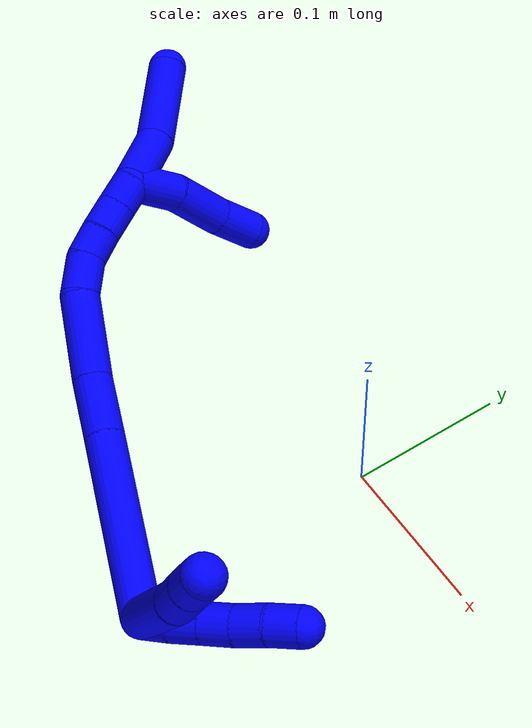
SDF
<sdf version="1.7">
 <world name="default">
  <model name="1">
   <static>0</static>
   <link name="1">
    <collision name="collision-cylinder-e_1_2_8">
     <pose>0.029746 0.015018 0.037684 -0.379226 0.632704 -0.125482</pose>
     <geometry><cylinder><radius>0.0125</radius><length>0.100608</length></cylinder></geometry>
     <surface>
      <friction><ode><mu>1.16</mu><mu2>1.16</mu2><slip1>0</slip1><slip2>0</slip2></ode></friction>
      <contact><ode><kp>1e+06</kp><kd>1</kd><max_vel>0</max_vel><min_depth>0.001</min_depth></ode></contact>
     </surface>
    </collision>
    <visual name="visual-cylinder-e_1_2_8">
     <pose>0.029746 0.015018 0.037684 -0.379226 0.632704 -0.125482</pose>
     <geometry><cylinder><radius>0.0125</radius><length>0.100608</length></cylinder></geometry>
     <material><ambient>0 0 1 1</ambient></material>
    </visual>
    <collision name="collision-cylinder-e_2_8_9">
     <pose>0.068793 0.035911 0.084525 -0.570487 0.707347 -0.215687</pose>
     <geometry><cylinder><radius>0.0125</radius><length>0.028627</length></cylinder></geometry>
     <surface>
      <friction><ode><mu>1.16</mu><mu2>1.16</mu2><slip1>0</slip1><slip2>0</slip2></ode></friction>
      <contact><ode><kp>1e+06</kp><kd>1</kd><max_vel>0</max_vel><min_depth>0.001</min_depth></ode></contact>
     </surface>
    </collision>
    <visual name="visual-cylinder-e_2_8_9">
     <pose>0.068793 0.035911 0.084525 -0.570487 0.707347 -0.215687</pose>
     <geometry><cylinder><radius>0.0125</radius><length>0.028627</length></cylinder></geometry>
     <material><ambient>0 0 1 1</ambient></material>
    </visual>
    <collision name="collision-cylinder-e_3_9_6">
     <pose>0.085267 0.045926 0.099945 -0.584009 0.762548 -0.239856</pose>
     <geometry><cylinder><radius>0.0125</radius><length>0.020765</length></cylinder></geometry>
     <surface>
      <friction><ode><mu>1.16</mu><mu2>1.16</mu2><slip1>0</slip1><slip2>0</slip2></ode></friction>
      <contact><ode><kp>1e+06</kp><kd>1</kd><max_vel>0</max_vel><min_depth>0.001</min_depth></ode></contact>
     </surface>
    </collision>
    <visual name="visual-cylinder-e_3_9_6">
     <pose>0.085267 0.045926 0.099945 -0.584009 0.762548 -0.239856</pose>
     <geometry><cylinder><radius>0.0125</radius><length>0.020765</length></cylinder></geometry>
     <material><ambient>0 0 1 1</ambient></material>
    </visual>
    <collision name="collision-cylinder-e_1_2_10">
     <pose>0.009459 -0.002394 0.002192 0.829561 1.24021 0.60927</pose>
     <geometry><cylinder><radius>0.0125</radius><length>0.02</length></cylinder></geometry>
     <surface>
      <friction><ode><mu>1.16</mu><mu2>1.16</mu2><slip1>0</slip1><slip2>0</slip2></ode></friction>
      <contact><ode><kp>1e+06</kp><kd>1</kd><max_vel>0</max_vel><min_depth>0.001</min_depth></ode></contact>
     </surface>
    </collision>
    <visual name="visual-cylinder-e_1_2_10">
     <pose>0.009459 -0.002394 0.002192 0.829561 1.24021 0.60927</pose>
     <geometry><cylinder><radius>0.0125</radius><length>0.02</length></cylinder></geometry>
     <material><ambient>0 0 1 1</ambient></material>
    </visual>
    <collision name="collision-cylinder-e_2_10_11">
     <pose>0.028563 -0.007206 0.005438 1.15938 1.30393 0.926908</pose>
     <geometry><cylinder><radius>0.0125</radius><length>0.02</length></cylinder></geometry>
     <surface>
      <friction><ode><mu>1.16</mu><mu2>1.16</mu2><slip1>0</slip1><slip2>0</slip2></ode></friction>
      <contact><ode><kp>1e+06</kp><kd>1</kd><max_vel>0</max_vel><min_depth>0.001</min_depth></ode></contact>
     </surface>
    </collision>
    <visual name="visual-cylinder-e_2_10_11">
     <pose>0.028563 -0.007206 0.005438 1.15938 1.30393 0.926908</pose>
     <geometry><cylinder><radius>0.0125</radius><length>0.02</length></cylinder></geometry>
     <material><ambient>0 0 1 1</ambient></material>
    </visual>
    <collision name="collision-cylinder-e_3_11_12">
     <pose>0.047828 -0.012113 0.007623 1.14478 1.29376 0.905856</pose>
     <geometry><cylinder><radius>0.0125</radius><length>0.02</length></cylinder></geometry>
     <surface>
      <friction><ode><mu>1.16</mu><mu2>1.16</mu2><slip1>0</slip1><slip2>0</slip2></ode></friction>
      <contact><ode><kp>1e+06</kp><kd>1</kd><max_vel>0</max_vel><min_depth>0.001</min_depth></ode></contact>
     </surface>
    </collision>
    <visual name="visual-cylinder-e_3_11_12">
     <pose>0.047828 -0.012113 0.007623 1.14478 1.29376 0.905856</pose>
     <geometry><cylinder><radius>0.0125</radius><length>0.02</length></cylinder></geometry>
     <material><ambient>0 0 1 1</ambient></material>
    </visual>
    <collision name="collision-cylinder-e_4_12_13">
     <pose>0.067239 -0.016163 0.010045 0.878826 1.36688 0.73119</pose>
     <geometry><cylinder><radius>0.0125</radius><length>0.02</length></cylinder></geometry>
     <surface>
      <friction><ode><mu>1.16</mu><mu2>1.16</mu2><slip1>0</slip1><slip2>0</slip2></ode></friction>
      <contact><ode><kp>1e+06</kp><kd>1</kd><max_vel>0</max_vel><min_depth>0.001</min_depth></ode></contact>
     </surface>
    </collision>
    <visual name="visual-cylinder-e_4_12_13">
     <pose>0.067239 -0.016163 0.010045 0.878826 1.36688 0.73119</pose>
     <geometry><cylinder><radius>0.0125</radius><length>0.02</length></cylinder></geometry>
     <material><ambient>0 0 1 1</ambient></material>
    </visual>
    <collision name="collision-cylinder-e_5_13_5">
     <pose>0.086682 -0.020245 0.012052 1.29482 1.30553 1.04835</pose>
     <geometry><cylinder><radius>0.0125</radius><length>0.02</length></cylinder></geometry>
     <surface>
      <friction><ode><mu>1.16</mu><mu2>1.16</mu2><slip1>0</slip1><slip2>0</slip2></ode></friction>
      <contact><ode><kp>1e+06</kp><kd>1</kd><max_vel>0</max_vel><min_depth>0.001</min_depth></ode></contact>
     </surface>
    </collision>
    <visual name="visual-cylinder-e_5_13_5">
     <pose>0.086682 -0.020245 0.012052 1.29482 1.30553 1.04835</pose>
     <geometry><cylinder><radius>0.0125</radius><length>0.02</length></cylinder></geometry>
     <material><ambient>0 0 1 1</ambient></material>
    </visual>
    <collision name="collision-cylinder-e_1_2_14">
     <pose>-0.007711 0.0455 -0.036403 -2.24558 -0.131569 0.272457</pose>
     <geometry><cylinder><radius>0.0125</radius><length>0.117556</length></cylinder></geometry>
     <surface>
      <friction><ode><mu>1.16</mu><mu2>1.16</mu2><slip1>0</slip1><slip2>0</slip2></ode></friction>
      <contact><ode><kp>1e+06</kp><kd>1</kd><max_vel>0</max_vel><min_depth>0.001</min_depth></ode></contact>
     </surface>
    </collision>
    <visual name="visual-cylinder-e_1_2_14">
     <pose>-0.007711 0.0455 -0.036403 -2.24558 -0.131569 0.272457</pose>
     <geometry><cylinder><radius>0.0125</radius><length>0.117556</length></cylinder></geometry>
     <material><ambient>0 0 1 1</ambient></material>
    </visual>
    <collision name="collision-cylinder-e_2_14_15">
     <pose>-0.017989 0.106751 -0.084904 -2.22578 -0.12853 0.259681</pose>
     <geometry><cylinder><radius>0.0125</radius><length>0.040054</length></cylinder></geometry>
     <surface>
      <friction><ode><mu>1.16</mu><mu2>1.16</mu2><slip1>0</slip1><slip2>0</slip2></ode></friction>
      <contact><ode><kp>1e+06</kp><kd>1</kd><max_vel>0</max_vel><min_depth>0.001</min_depth></ode></contact>
     </surface>
    </collision>
    <visual name="visual-cylinder-e_2_14_15">
     <pose>-0.017989 0.106751 -0.084904 -2.22578 -0.12853 0.259681</pose>
     <geometry><cylinder><radius>0.0125</radius><length>0.040054</length></cylinder></geometry>
     <material><ambient>0 0 1 1</ambient></material>
    </visual>
    <collision name="collision-cylinder-e_3_15_16">
     <pose>-0.021126 0.146545 -0.111618 -2.11701 -0.02024 0.035988</pose>
     <geometry><cylinder><radius>0.0125</radius><length>0.056286</length></cylinder></geometry>
     <surface>
      <friction><ode><mu>1.16</mu><mu2>1.16</mu2><slip1>0</slip1><slip2>0</slip2></ode></friction>
      <contact><ode><kp>1e+06</kp><kd>1</kd><max_vel>0</max_vel><min_depth>0.001</min_depth></ode></contact>
     </surface>
    </collision>
    <visual name="visual-cylinder-e_3_15_16">
     <pose>-0.021126 0.146545 -0.111618 -2.11701 -0.02024 0.035988</pose>
     <geometry><cylinder><radius>0.0125</radius><length>0.056286</length></cylinder></geometry>
     <material><ambient>0 0 1 1</ambient></material>
    </visual>
    <collision name="collision-cylinder-e_4_16_17">
     <pose>-0.019064 0.17997 -0.134594 -2.29864 0.206395 -0.454029</pose>
     <geometry><cylinder><radius>0.0125</radius><length>0.025677</length></cylinder></geometry>
     <surface>
      <friction><ode><mu>1.16</mu><mu2>1.16</mu2><slip1>0</slip1><slip2>0</slip2></ode></friction>
      <contact><ode><kp>1e+06</kp><kd>1</kd><max_vel>0</max_vel><min_depth>0.001</min_depth></ode></contact>
     </surface>
    </collision>
    <visual name="visual-cylinder-e_4_16_17">
     <pose>-0.019064 0.17997 -0.134594 -2.29864 0.206395 -0.454029</pose>
     <geometry><cylinder><radius>0.0125</radius><length>0.025677</length></cylinder></geometry>
     <material><ambient>0 0 1 1</ambient></material>
    </visual>
    <collision name="collision-cylinder-e_5_17_18">
     <pose>-0.011213 0.195303 -0.149203 -2.38066 0.544017 -1.21793</pose>
     <geometry><cylinder><radius>0.0125</radius><length>0.020171</length></cylinder></geometry>
     <surface>
      <friction><ode><mu>1.16</mu><mu2>1.16</mu2><slip1>0</slip1><slip2>0</slip2></ode></friction>
      <contact><ode><kp>1e+06</kp><kd>1</kd><max_vel>0</max_vel><min_depth>0.001</min_depth></ode></contact>
     </surface>
    </collision>
    <visual name="visual-cylinder-e_5_17_18">
     <pose>-0.011213 0.195303 -0.149203 -2.38066 0.544017 -1.21793</pose>
     <geometry><cylinder><radius>0.0125</radius><length>0.020171</length></cylinder></geometry>
     <material><ambient>0 0 1 1</ambient></material>
    </visual>
    <collision name="collision-cylinder-e_6_18_19">
     <pose>-0.000766 0.206595 -0.162138 -2.46752 0.548395 -1.3528</pose>
     <geometry><cylinder><radius>0.0125</radius><length>0.020055</length></cylinder></geometry>
     <surface>
      <friction><ode><mu>1.16</mu><mu2>1.16</mu2><slip1>0</slip1><slip2>0</slip2></ode></friction>
      <contact><ode><kp>1e+06</kp><kd>1</kd><max_vel>0</max_vel><min_depth>0.001</min_depth></ode></contact>
     </surface>
    </collision>
    <visual name="visual-cylinder-e_6_18_19">
     <pose>-0.000766 0.206595 -0.162138 -2.46752 0.548395 -1.3528</pose>
     <geometry><cylinder><radius>0.0125</radius><length>0.020055</length></cylinder></geometry>
     <material><ambient>0 0 1 1</ambient></material>
    </visual>
    <collision name="collision-cylinder-e_7_19_1">
     <pose>0.010057 0.217377 -0.175236 -2.43804 0.587067 -1.37782</pose>
     <geometry><cylinder><radius>0.0125</radius><length>0.020203</length></cylinder></geometry>
     <surface>
      <friction><ode><mu>1.16</mu><mu2>1.16</mu2><slip1>0</slip1><slip2>0</slip2></ode></friction>
      <contact><ode><kp>1e+06</kp><kd>1</kd><max_vel>0</max_vel><min_depth>0.001</min_depth></ode></contact>
     </surface>
    </collision>
    <visual name="visual-cylinder-e_7_19_1">
     <pose>0.010057 0.217377 -0.175236 -2.43804 0.587067 -1.37782</pose>
     <geometry><cylinder><radius>0.0125</radius><length>0.020203</length></cylinder></geometry>
     <material><ambient>0 0 1 1</ambient></material>
    </visual>
    <collision name="collision-cylinder-e_1_1_20">
     <pose>0.023789 0.214285 -0.193499 2.51752 0.508384 1.3561</pose>
     <geometry><cylinder><radius>0.0125</radius><length>0.033431</length></cylinder></geometry>
     <surface>
      <friction><ode><mu>1.16</mu><mu2>1.16</mu2><slip1>0</slip1><slip2>0</slip2></ode></friction>
      <contact><ode><kp>1e+06</kp><kd>1</kd><max_vel>0</max_vel><min_depth>0.001</min_depth></ode></contact>
     </surface>
    </collision>
    <visual name="visual-cylinder-e_1_1_20">
     <pose>0.023789 0.214285 -0.193499 2.51752 0.508384 1.3561</pose>
     <geometry><cylinder><radius>0.0125</radius><length>0.033431</length></cylinder></geometry>
     <material><ambient>0 0 1 1</ambient></material>
    </visual>
    <collision name="collision-cylinder-e_2_20_21">
     <pose>0.038525 0.192953 -0.217325 2.32302 0.360084 0.794563</pose>
     <geometry><cylinder><radius>0.0125</radius><length>0.037461</length></cylinder></geometry>
     <surface>
      <friction><ode><mu>1.16</mu><mu2>1.16</mu2><slip1>0</slip1><slip2>0</slip2></ode></friction>
      <contact><ode><kp>1e+06</kp><kd>1</kd><max_vel>0</max_vel><min_depth>0.001</min_depth></ode></contact>
     </surface>
    </collision>
    <visual name="visual-cylinder-e_2_20_21">
     <pose>0.038525 0.192953 -0.217325 2.32302 0.360084 0.794563</pose>
     <geometry><cylinder><radius>0.0125</radius><length>0.037461</length></cylinder></geometry>
     <material><ambient>0 0 1 1</ambient></material>
    </visual>
    <collision name="collision-cylinder-e_3_21_4">
     <pose>0.051393 0.170989 -0.238711 2.36933 0.445233 1.01612</pose>
     <geometry><cylinder><radius>0.0125</radius><length>0.029108</length></cylinder></geometry>
     <surface>
      <friction><ode><mu>1.16</mu><mu2>1.16</mu2><slip1>0</slip1><slip2>0</slip2></ode></friction>
      <contact><ode><kp>1e+06</kp><kd>1</kd><max_vel>0</max_vel><min_depth>0.001</min_depth></ode></contact>
     </surface>
    </collision>
    <visual name="visual-cylinder-e_3_21_4">
     <pose>0.051393 0.170989 -0.238711 2.36933 0.445233 1.01612</pose>
     <geometry><cylinder><radius>0.0125</radius><length>0.029108</length></cylinder></geometry>
     <material><ambient>0 0 1 1</ambient></material>
    </visual>
    <collision name="collision-cylinder-e_1_1_22">
     <pose>0.021156 0.231738 -0.199214 -2.67165 0.272402 -1.03988</pose>
     <geometry><cylinder><radius>0.0125</radius><length>0.040909</length></cylinder></geometry>
     <surface>
      <friction><ode><mu>1.16</mu><mu2>1.16</mu2><slip1>0</slip1><slip2>0</slip2></ode></friction>
      <contact><ode><kp>1e+06</kp><kd>1</kd><max_vel>0</max_vel><min_depth>0.001</min_depth></ode></contact>
     </surface>
    </collision>
    <visual name="visual-cylinder-e_1_1_22">
     <pose>0.021156 0.231738 -0.199214 -2.67165 0.272402 -1.03988</pose>
     <geometry><cylinder><radius>0.0125</radius><length>0.040909</length></cylinder></geometry>
     <material><ambient>0 0 1 1</ambient></material>
    </visual>
    <collision name="collision-cylinder-e_2_22_3">
     <pose>0.03207 0.261069 -0.237446 -2.36246 0.184166 -0.442495</pose>
     <geometry><cylinder><radius>0.0125</radius><length>0.059091</length></cylinder></geometry>
     <surface>
      <friction><ode><mu>1.16</mu><mu2>1.16</mu2><slip1>0</slip1><slip2>0</slip2></ode></friction>
      <contact><ode><kp>1e+06</kp><kd>1</kd><max_vel>0</max_vel><min_depth>0.001</min_depth></ode></contact>
     </surface>
    </collision>
    <visual name="visual-cylinder-e_2_22_3">
     <pose>0.03207 0.261069 -0.237446 -2.36246 0.184166 -0.442495</pose>
     <geometry><cylinder><radius>0.0125</radius><length>0.059091</length></cylinder></geometry>
     <material><ambient>0 0 1 1</ambient></material>
    </visual>
    <collision name="collision-sphere-3">
     <pose>0.03748 0.281478 -0.258112 0 -0 0</pose>
     <geometry><sphere><radius>0.0125</radius></sphere></geometry>
     <surface>
      <friction><ode><mu>1.16</mu><mu2>1.16</mu2><slip1>0</slip1><slip2>0</slip2></ode></friction>
      <contact><ode><kp>1e+06</kp><kd>1</kd><max_vel>0</max_vel><min_depth>0.001</min_depth></ode></contact>
     </surface>
    </collision>
    <visual name="visual-sphere-3">
     <pose>0.03748 0.281478 -0.258112 0 -0 0</pose>
     <geometry><sphere><radius>0.0125</radius></sphere></geometry>
     <material><ambient>0 0 1 1</ambient></material>
    </visual>
    <collision name="collision-sphere-22">
     <pose>0.026659 0.24066 -0.216779 0 -0 0</pose>
     <geometry><sphere><radius>0.0125</radius></sphere></geometry>
     <surface>
      <friction><ode><mu>1.16</mu><mu2>1.16</mu2><slip1>0</slip1><slip2>0</slip2></ode></friction>
      <contact><ode><kp>1e+06</kp><kd>1</kd><max_vel>0</max_vel><min_depth>0.001</min_depth></ode></contact>
     </surface>
    </collision>
    <visual name="visual-sphere-22">
     <pose>0.026659 0.24066 -0.216779 0 -0 0</pose>
     <geometry><sphere><radius>0.0125</radius></sphere></geometry>
     <material><ambient>0 0 1 1</ambient></material>
    </visual>
    <collision name="collision-sphere-4">
     <pose>0.057661 0.161824 -0.24812 0 -0 0</pose>
     <geometry><sphere><radius>0.0125</radius></sphere></geometry>
     <surface>
      <friction><ode><mu>1.16</mu><mu2>1.16</mu2><slip1>0</slip1><slip2>0</slip2></ode></friction>
      <contact><ode><kp>1e+06</kp><kd>1</kd><max_vel>0</max_vel><min_depth>0.001</min_depth></ode></contact>
     </surface>
    </collision>
    <visual name="visual-sphere-4">
     <pose>0.057661 0.161824 -0.24812 0 -0 0</pose>
     <geometry><sphere><radius>0.0125</radius></sphere></geometry>
     <material><ambient>0 0 1 1</ambient></material>
    </visual>
    <collision name="collision-sphere-21">
     <pose>0.045125 0.180154 -0.229302 0 -0 0</pose>
     <geometry><sphere><radius>0.0125</radius></sphere></geometry>
     <surface>
      <friction><ode><mu>1.16</mu><mu2>1.16</mu2><slip1>0</slip1><slip2>0</slip2></ode></friction>
      <contact><ode><kp>1e+06</kp><kd>1</kd><max_vel>0</max_vel><min_depth>0.001</min_depth></ode></contact>
     </surface>
    </collision>
    <visual name="visual-sphere-21">
     <pose>0.045125 0.180154 -0.229302 0 -0 0</pose>
     <geometry><sphere><radius>0.0125</radius></sphere></geometry>
     <material><ambient>0 0 1 1</ambient></material>
    </visual>
    <collision name="collision-sphere-20">
     <pose>0.031926 0.205753 -0.205348 0 -0 0</pose>
     <geometry><sphere><radius>0.0125</radius></sphere></geometry>
     <surface>
      <friction><ode><mu>1.16</mu><mu2>1.16</mu2><slip1>0</slip1><slip2>0</slip2></ode></friction>
      <contact><ode><kp>1e+06</kp><kd>1</kd><max_vel>0</max_vel><min_depth>0.001</min_depth></ode></contact>
     </surface>
    </collision>
    <visual name="visual-sphere-20">
     <pose>0.031926 0.205753 -0.205348 0 -0 0</pose>
     <geometry><sphere><radius>0.0125</radius></sphere></geometry>
     <material><ambient>0 0 1 1</ambient></material>
    </visual>
    <collision name="collision-sphere-11">
     <pose>0.038209 -0.009623 0.006493 0 -0 0</pose>
     <geometry><sphere><radius>0.0125</radius></sphere></geometry>
     <surface>
      <friction><ode><mu>1.16</mu><mu2>1.16</mu2><slip1>0</slip1><slip2>0</slip2></ode></friction>
      <contact><ode><kp>1e+06</kp><kd>1</kd><max_vel>0</max_vel><min_depth>0.001</min_depth></ode></contact>
     </surface>
    </collision>
    <visual name="visual-sphere-11">
     <pose>0.038209 -0.009623 0.006493 0 -0 0</pose>
     <geometry><sphere><radius>0.0125</radius></sphere></geometry>
     <material><ambient>0 0 1 1</ambient></material>
    </visual>
    <collision name="collision-sphere-10">
     <pose>0.018917 -0.004789 0.004383 0 -0 0</pose>
     <geometry><sphere><radius>0.0125</radius></sphere></geometry>
     <surface>
      <friction><ode><mu>1.16</mu><mu2>1.16</mu2><slip1>0</slip1><slip2>0</slip2></ode></friction>
      <contact><ode><kp>1e+06</kp><kd>1</kd><max_vel>0</max_vel><min_depth>0.001</min_depth></ode></contact>
     </surface>
    </collision>
    <visual name="visual-sphere-10">
     <pose>0.018917 -0.004789 0.004383 0 -0 0</pose>
     <geometry><sphere><radius>0.0125</radius></sphere></geometry>
     <material><ambient>0 0 1 1</ambient></material>
    </visual>
    <collision name="collision-sphere-6">
     <pose>0.092438 0.050065 0.106208 0 -0 0</pose>
     <geometry><sphere><radius>0.0125</radius></sphere></geometry>
     <surface>
      <friction><ode><mu>1.16</mu><mu2>1.16</mu2><slip1>0</slip1><slip2>0</slip2></ode></friction>
      <contact><ode><kp>1e+06</kp><kd>1</kd><max_vel>0</max_vel><min_depth>0.001</min_depth></ode></contact>
     </surface>
    </collision>
    <visual name="visual-sphere-6">
     <pose>0.092438 0.050065 0.106208 0 -0 0</pose>
     <geometry><sphere><radius>0.0125</radius></sphere></geometry>
     <material><ambient>0 0 1 1</ambient></material>
    </visual>
    <collision name="collision-sphere-9">
     <pose>0.078095 0.041787 0.093682 0 -0 0</pose>
     <geometry><sphere><radius>0.0125</radius></sphere></geometry>
     <surface>
      <friction><ode><mu>1.16</mu><mu2>1.16</mu2><slip1>0</slip1><slip2>0</slip2></ode></friction>
      <contact><ode><kp>1e+06</kp><kd>1</kd><max_vel>0</max_vel><min_depth>0.001</min_depth></ode></contact>
     </surface>
    </collision>
    <visual name="visual-sphere-9">
     <pose>0.078095 0.041787 0.093682 0 -0 0</pose>
     <geometry><sphere><radius>0.0125</radius></sphere></geometry>
     <material><ambient>0 0 1 1</ambient></material>
    </visual>
    <collision name="collision-sphere-2">
     <geometry><sphere><radius>0.0125</radius></sphere></geometry>
     <surface>
      <friction><ode><mu>1.16</mu><mu2>1.16</mu2><slip1>0</slip1><slip2>0</slip2></ode></friction>
      <contact><ode><kp>1e+06</kp><kd>1</kd><max_vel>0</max_vel><min_depth>0.001</min_depth></ode></contact>
     </surface>
    </collision>
    <visual name="visual-sphere-2">
     <geometry><sphere><radius>0.0125</radius></sphere></geometry>
     <material><ambient>0 0 1 1</ambient></material>
    </visual>
    <collision name="collision-sphere-19">
     <pose>0.004462 0.211936 -0.168823 0 -0 0</pose>
     <geometry><sphere><radius>0.0125</radius></sphere></geometry>
     <surface>
      <friction><ode><mu>1.16</mu><mu2>1.16</mu2><slip1>0</slip1><slip2>0</slip2></ode></friction>
      <contact><ode><kp>1e+06</kp><kd>1</kd><max_vel>0</max_vel><min_depth>0.001</min_depth></ode></contact>
     </surface>
    </collision>
    <visual name="visual-sphere-19">
     <pose>0.004462 0.211936 -0.168823 0 -0 0</pose>
     <geometry><sphere><radius>0.0125</radius></sphere></geometry>
     <material><ambient>0 0 1 1</ambient></material>
    </visual>
    <collision name="collision-sphere-8">
     <pose>0.059492 0.030036 0.075369 0 -0 0</pose>
     <geometry><sphere><radius>0.0125</radius></sphere></geometry>
     <surface>
      <friction><ode><mu>1.16</mu><mu2>1.16</mu2><slip1>0</slip1><slip2>0</slip2></ode></friction>
      <contact><ode><kp>1e+06</kp><kd>1</kd><max_vel>0</max_vel><min_depth>0.001</min_depth></ode></contact>
     </surface>
    </collision>
    <visual name="visual-sphere-8">
     <pose>0.059492 0.030036 0.075369 0 -0 0</pose>
     <geometry><sphere><radius>0.0125</radius></sphere></geometry>
     <material><ambient>0 0 1 1</ambient></material>
    </visual>
    <collision name="collision-sphere-12">
     <pose>0.057446 -0.014604 0.008753 0 -0 0</pose>
     <geometry><sphere><radius>0.0125</radius></sphere></geometry>
     <surface>
      <friction><ode><mu>1.16</mu><mu2>1.16</mu2><slip1>0</slip1><slip2>0</slip2></ode></friction>
      <contact><ode><kp>1e+06</kp><kd>1</kd><max_vel>0</max_vel><min_depth>0.001</min_depth></ode></contact>
     </surface>
    </collision>
    <visual name="visual-sphere-12">
     <pose>0.057446 -0.014604 0.008753 0 -0 0</pose>
     <geometry><sphere><radius>0.0125</radius></sphere></geometry>
     <material><ambient>0 0 1 1</ambient></material>
    </visual>
    <collision name="collision-sphere-13">
     <pose>0.077032 -0.017723 0.011337 0 -0 0</pose>
     <geometry><sphere><radius>0.0125</radius></sphere></geometry>
     <surface>
      <friction><ode><mu>1.16</mu><mu2>1.16</mu2><slip1>0</slip1><slip2>0</slip2></ode></friction>
      <contact><ode><kp>1e+06</kp><kd>1</kd><max_vel>0</max_vel><min_depth>0.001</min_depth></ode></contact>
     </surface>
    </collision>
    <visual name="visual-sphere-13">
     <pose>0.077032 -0.017723 0.011337 0 -0 0</pose>
     <geometry><sphere><radius>0.0125</radius></sphere></geometry>
     <material><ambient>0 0 1 1</ambient></material>
    </visual>
    <collision name="collision-sphere-5">
     <pose>0.096333 -0.022767 0.012766 0 -0 0</pose>
     <geometry><sphere><radius>0.0125</radius></sphere></geometry>
     <surface>
      <friction><ode><mu>1.16</mu><mu2>1.16</mu2><slip1>0</slip1><slip2>0</slip2></ode></friction>
      <contact><ode><kp>1e+06</kp><kd>1</kd><max_vel>0</max_vel><min_depth>0.001</min_depth></ode></contact>
     </surface>
    </collision>
    <visual name="visual-sphere-5">
     <pose>0.096333 -0.022767 0.012766 0 -0 0</pose>
     <geometry><sphere><radius>0.0125</radius></sphere></geometry>
     <material><ambient>0 0 1 1</ambient></material>
    </visual>
    <collision name="collision-sphere-14">
     <pose>-0.015422 0.090999 -0.072805 0 -0 0</pose>
     <geometry><sphere><radius>0.0125</radius></sphere></geometry>
     <surface>
      <friction><ode><mu>1.16</mu><mu2>1.16</mu2><slip1>0</slip1><slip2>0</slip2></ode></friction>
      <contact><ode><kp>1e+06</kp><kd>1</kd><max_vel>0</max_vel><min_depth>0.001</min_depth></ode></contact>
     </surface>
    </collision>
    <visual name="visual-sphere-14">
     <pose>-0.015422 0.090999 -0.072805 0 -0 0</pose>
     <geometry><sphere><radius>0.0125</radius></sphere></geometry>
     <material><ambient>0 0 1 1</ambient></material>
    </visual>
    <collision name="collision-sphere-15">
     <pose>-0.020556 0.122502 -0.097002 0 -0 0</pose>
     <geometry><sphere><radius>0.0125</radius></sphere></geometry>
     <surface>
      <friction><ode><mu>1.16</mu><mu2>1.16</mu2><slip1>0</slip1><slip2>0</slip2></ode></friction>
      <contact><ode><kp>1e+06</kp><kd>1</kd><max_vel>0</max_vel><min_depth>0.001</min_depth></ode></contact>
     </surface>
    </collision>
    <visual name="visual-sphere-15">
     <pose>-0.020556 0.122502 -0.097002 0 -0 0</pose>
     <geometry><sphere><radius>0.0125</radius></sphere></geometry>
     <material><ambient>0 0 1 1</ambient></material>
    </visual>
    <collision name="collision-sphere-16">
     <pose>-0.021695 0.170588 -0.126234 0 -0 0</pose>
     <geometry><sphere><radius>0.0125</radius></sphere></geometry>
     <surface>
      <friction><ode><mu>1.16</mu><mu2>1.16</mu2><slip1>0</slip1><slip2>0</slip2></ode></friction>
      <contact><ode><kp>1e+06</kp><kd>1</kd><max_vel>0</max_vel><min_depth>0.001</min_depth></ode></contact>
     </surface>
    </collision>
    <visual name="visual-sphere-16">
     <pose>-0.021695 0.170588 -0.126234 0 -0 0</pose>
     <geometry><sphere><radius>0.0125</radius></sphere></geometry>
     <material><ambient>0 0 1 1</ambient></material>
    </visual>
    <collision name="collision-sphere-17">
     <pose>-0.016433 0.189352 -0.142954 0 -0 0</pose>
     <geometry><sphere><radius>0.0125</radius></sphere></geometry>
     <surface>
      <friction><ode><mu>1.16</mu><mu2>1.16</mu2><slip1>0</slip1><slip2>0</slip2></ode></friction>
      <contact><ode><kp>1e+06</kp><kd>1</kd><max_vel>0</max_vel><min_depth>0.001</min_depth></ode></contact>
     </surface>
    </collision>
    <visual name="visual-sphere-17">
     <pose>-0.016433 0.189352 -0.142954 0 -0 0</pose>
     <geometry><sphere><radius>0.0125</radius></sphere></geometry>
     <material><ambient>0 0 1 1</ambient></material>
    </visual>
    <collision name="collision-sphere-18">
     <pose>-0.005993 0.201254 -0.155452 0 -0 0</pose>
     <geometry><sphere><radius>0.0125</radius></sphere></geometry>
     <surface>
      <friction><ode><mu>1.16</mu><mu2>1.16</mu2><slip1>0</slip1><slip2>0</slip2></ode></friction>
      <contact><ode><kp>1e+06</kp><kd>1</kd><max_vel>0</max_vel><min_depth>0.001</min_depth></ode></contact>
     </surface>
    </collision>
    <visual name="visual-sphere-18">
     <pose>-0.005993 0.201254 -0.155452 0 -0 0</pose>
     <geometry><sphere><radius>0.0125</radius></sphere></geometry>
     <material><ambient>0 0 1 1</ambient></material>
    </visual>
    <collision name="collision-sphere-1">
     <pose>0.015652 0.222817 -0.181649 0 -0 0</pose>
     <geometry><sphere><radius>0.0125</radius></sphere></geometry>
     <surface>
      <friction><ode><mu>1.16</mu><mu2>1.16</mu2><slip1>0</slip1><slip2>0</slip2></ode></friction>
      <contact><ode><kp>1e+06</kp><kd>1</kd><max_vel>0</max_vel><min_depth>0.001</min_depth></ode></contact>
     </surface>
    </collision>
    <visual name="visual-sphere-1">
     <pose>0.015652 0.222817 -0.181649 0 -0 0</pose>
     <geometry><sphere><radius>0.0125</radius></sphere></geometry>
     <material><ambient>0 0 1 1</ambient></material>
    </visual>
    <inertial>
     <pose>0.019572 0.108766 -0.082567 0 -0 0</pose>
     <mass>0.75</mass>
     <inertia>
      <ixx>0.000307</ixx>
      <ixy>0</ixy>
      <ixz>0</ixz>
      <iyy>2.8e-05</iyy>
      <iyz>0</iyz>
      <izz>-0.000241</izz>
     </inertia>
    </inertial>
   </link>
   <pose>0.014177 -0.165512 0.011491 0.90363 -0.429494 0.98791</pose>
  </model>
 </world>
</sdf>
